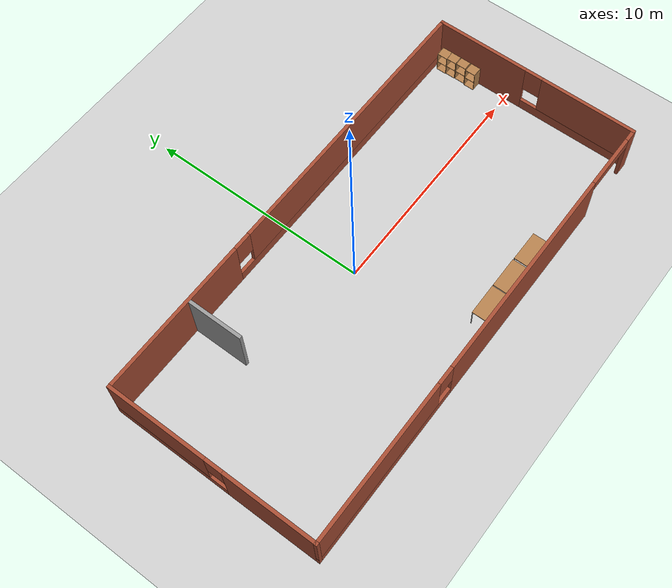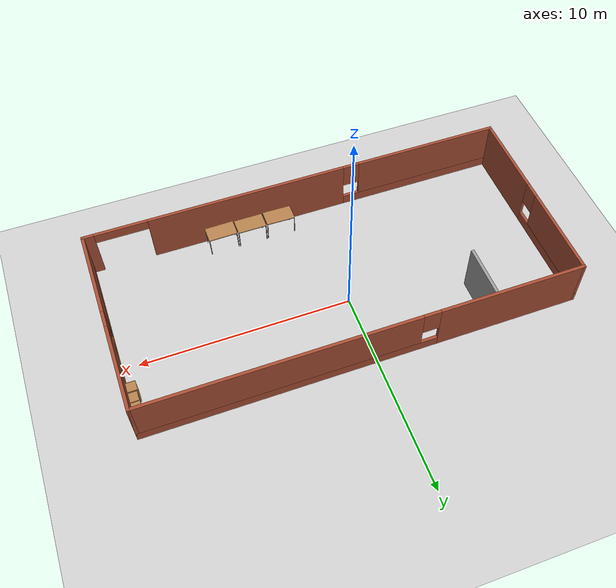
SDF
<sdf version="1.6">
 <world name="default">
  <model name="ground_plane">
   <static>1</static>
   <link name="link">
    <collision name="collision">
     <geometry><plane><normal>0 0 1</normal><size>100 100</size></plane></geometry>
     <surface><friction><ode><mu>100</mu><mu2>50</mu2></ode></friction></surface>
    </collision>
    <visual name="visual">
     <cast_shadows>0</cast_shadows>
     <geometry><plane><normal>0 0 1</normal><size>100 100</size></plane></geometry>
     <material>
      <script><uri>file://media/materials/scripts/gazebo.material</uri><name>Gazebo/Grey</name></script>
     </material>
    </visual>
   </link>
  </model>
  <model name="workplace">
   <pose>0.499703 -1.20911 0 0 -0 0</pose>
   <link name="Wall_1">
    <pose>0 4.675 0 0 -0 0</pose>
    <visual name="Wall_1_Visual_0">
     <pose>-6.85973 0 1.25 0 -0 0</pose>
     <geometry><box><size>7.03053 0.15 2.5</size></box></geometry>
     <material>
      <script><uri>file://media/materials/scripts/gazebo.material</uri><name>Gazebo/Bricks</name></script>
      <ambient>1 1 1 1</ambient>
     </material>
    </visual>
    <collision name="Wall_1_Collision_0">
     <geometry><box><size>7.03053 0.15 2.5</size></box></geometry>
     <pose>-6.85973 0 1.25 0 -0 0</pose>
    </collision>
    <visual name="Wall_1_Visual_1">
     <pose>3.51527 0 0.25 0 -0 0</pose>
     <geometry><box><size>13.7195 0.15 0.5</size></box></geometry>
     <material>
      <script><uri>file://media/materials/scripts/gazebo.material</uri><name>Gazebo/Bricks</name></script>
      <ambient>1 1 1 1</ambient>
     </material>
    </visual>
    <collision name="Wall_1_Collision_1">
     <geometry><box><size>13.7195 0.15 0.5</size></box></geometry>
     <pose>3.51527 0 0.25 0 -0 0</pose>
    </collision>
    <visual name="Wall_1_Visual_2">
     <pose>3.91527 0 1.5 0 -0 0</pose>
     <geometry><box><size>12.9195 0.15 2</size></box></geometry>
     <material>
      <script><uri>file://media/materials/scripts/gazebo.material</uri><name>Gazebo/Bricks</name></script>
      <ambient>1 1 1 1</ambient>
     </material>
    </visual>
    <collision name="Wall_1_Collision_2">
     <geometry><box><size>12.9195 0.15 2</size></box></geometry>
     <pose>3.91527 0 1.5 0 -0 0</pose>
    </collision>
    <visual name="Wall_1_Visual_3">
     <pose>-2.94447 0 1.9 0 -0 0</pose>
     <geometry><box><size>0.8 0.15 1.2</size></box></geometry>
     <material>
      <script><uri>file://media/materials/scripts/gazebo.material</uri><name>Gazebo/Bricks</name></script>
      <ambient>1 1 1 1</ambient>
     </material>
    </visual>
    <collision name="Wall_1_Collision_3">
     <geometry><box><size>0.8 0.15 1.2</size></box></geometry>
     <pose>-2.94447 0 1.9 0 -0 0</pose>
    </collision>
   </link>
   <link name="Wall_2">
    <pose>10.3 0 0 0 0 -1.5708</pose>
    <visual name="Wall_2_Visual_0">
     <pose>-2.59944 0 1.25 0 -0 0</pose>
     <geometry><box><size>4.30112 0.15 2.5</size></box></geometry>
     <material>
      <script><uri>file://media/materials/scripts/gazebo.material</uri><name>Gazebo/Bricks</name></script>
      <ambient>1 1 1 1</ambient>
     </material>
    </visual>
    <collision name="Wall_2_Collision_0">
     <geometry><box><size>4.30112 0.15 2.5</size></box></geometry>
     <pose>-2.59944 0 1.25 0 -0 0</pose>
    </collision>
    <visual name="Wall_2_Visual_1">
     <pose>2.15056 0 0.25 0 -0 0</pose>
     <geometry><box><size>5.19888 0.15 0.5</size></box></geometry>
     <material>
      <script><uri>file://media/materials/scripts/gazebo.material</uri><name>Gazebo/Bricks</name></script>
      <ambient>1 1 1 1</ambient>
     </material>
    </visual>
    <collision name="Wall_2_Collision_1">
     <geometry><box><size>5.19888 0.15 0.5</size></box></geometry>
     <pose>2.15056 0 0.25 0 -0 0</pose>
    </collision>
    <visual name="Wall_2_Visual_2">
     <pose>2.55056 0 1.5 0 -0 0</pose>
     <geometry><box><size>4.39888 0.15 2</size></box></geometry>
     <material>
      <script><uri>file://media/materials/scripts/gazebo.material</uri><name>Gazebo/Bricks</name></script>
      <ambient>1 1 1 1</ambient>
     </material>
    </visual>
    <collision name="Wall_2_Collision_2">
     <geometry><box><size>4.39888 0.15 2</size></box></geometry>
     <pose>2.55056 0 1.5 0 -0 0</pose>
    </collision>
    <visual name="Wall_2_Visual_3">
     <pose>-0.048879 0 1.9 0 -0 0</pose>
     <geometry><box><size>0.8 0.15 1.2</size></box></geometry>
     <material>
      <script><uri>file://media/materials/scripts/gazebo.material</uri><name>Gazebo/Bricks</name></script>
      <ambient>1 1 1 1</ambient>
     </material>
    </visual>
    <collision name="Wall_2_Collision_3">
     <geometry><box><size>0.8 0.15 1.2</size></box></geometry>
     <pose>-0.048879 0 1.9 0 -0 0</pose>
    </collision>
   </link>
   <link name="Wall_3">
    <pose>0 -4.675 0 0 -0 3.14159</pose>
    <visual name="Wall_3_Visual_0">
     <pose>-10.0767 0 1.25 0 -0 0</pose>
     <geometry><box><size>0.596685 0.15 2.5</size></box></geometry>
     <material>
      <script><uri>file://media/materials/scripts/gazebo.material</uri><name>Gazebo/Bricks</name></script>
      <ambient>1 1 1 1</ambient>
     </material>
    </visual>
    <collision name="Wall_3_Collision_0">
     <geometry><box><size>0.596685 0.15 2.5</size></box></geometry>
     <pose>-10.0767 0 1.25 0 -0 0</pose>
    </collision>
    <visual name="Wall_3_Visual_1">
     <pose>-2.43632 0 1.25 0 -0 0</pose>
     <geometry><box><size>9.684 0.15 2.5</size></box></geometry>
     <material>
      <script><uri>file://media/materials/scripts/gazebo.material</uri><name>Gazebo/Bricks</name></script>
      <ambient>1 1 1 1</ambient>
     </material>
    </visual>
    <collision name="Wall_3_Collision_1">
     <geometry><box><size>9.684 0.15 2.5</size></box></geometry>
     <pose>-2.43632 0 1.25 0 -0 0</pose>
    </collision>
    <visual name="Wall_3_Visual_2">
     <pose>6.39034 0 0.25 0 -0 0</pose>
     <geometry><box><size>7.96932 0.15 0.5</size></box></geometry>
     <material>
      <script><uri>file://media/materials/scripts/gazebo.material</uri><name>Gazebo/Bricks</name></script>
      <ambient>1 1 1 1</ambient>
     </material>
    </visual>
    <collision name="Wall_3_Collision_2">
     <geometry><box><size>7.96932 0.15 0.5</size></box></geometry>
     <pose>6.39034 0 0.25 0 -0 0</pose>
    </collision>
    <visual name="Wall_3_Visual_3">
     <pose>6.79034 0 1.5 0 -0 0</pose>
     <geometry><box><size>7.16932 0.15 2</size></box></geometry>
     <material>
      <script><uri>file://media/materials/scripts/gazebo.material</uri><name>Gazebo/Bricks</name></script>
      <ambient>1 1 1 1</ambient>
     </material>
    </visual>
    <collision name="Wall_3_Collision_3">
     <geometry><box><size>7.16932 0.15 2</size></box></geometry>
     <pose>6.79034 0 1.5 0 -0 0</pose>
    </collision>
    <visual name="Wall_3_Visual_4">
     <pose>2.80568 0 1.9 0 -0 0</pose>
     <geometry><box><size>0.8 0.15 1.2</size></box></geometry>
     <material>
      <script><uri>file://media/materials/scripts/gazebo.material</uri><name>Gazebo/Bricks</name></script>
      <ambient>1 1 1 1</ambient>
     </material>
    </visual>
    <collision name="Wall_3_Collision_4">
     <geometry><box><size>0.8 0.15 1.2</size></box></geometry>
     <pose>2.80568 0 1.9 0 -0 0</pose>
    </collision>
    <visual name="Wall_3_Visual_5">
     <pose>-8.52831 0 2.25 0 -0 0</pose>
     <geometry><box><size>2.5 0.15 0.5</size></box></geometry>
     <material>
      <script><uri>file://media/materials/scripts/gazebo.material</uri><name>Gazebo/Bricks</name></script>
      <ambient>1 1 1 1</ambient>
     </material>
    </visual>
    <collision name="Wall_3_Collision_5">
     <geometry><box><size>2.5 0.15 0.5</size></box></geometry>
     <pose>-8.52831 0 2.25 0 -0 0</pose>
    </collision>
   </link>
   <link name="Wall_4">
    <pose>-10.3 0 0 0 -0 1.5708</pose>
    <visual name="Wall_4_Visual_0">
     <pose>-2.66621 0 1.25 0 -0 0</pose>
     <geometry><box><size>4.16757 0.15 2.5</size></box></geometry>
     <material>
      <script><uri>file://media/materials/scripts/gazebo.material</uri><name>Gazebo/Bricks</name></script>
      <ambient>1 1 1 1</ambient>
     </material>
    </visual>
    <collision name="Wall_4_Collision_0">
     <geometry><box><size>4.16757 0.15 2.5</size></box></geometry>
     <pose>-2.66621 0 1.25 0 -0 0</pose>
    </collision>
    <visual name="Wall_4_Visual_1">
     <pose>2.08379 0 0.25 0 -0 0</pose>
     <geometry><box><size>5.33243 0.15 0.5</size></box></geometry>
     <material>
      <script><uri>file://media/materials/scripts/gazebo.material</uri><name>Gazebo/Bricks</name></script>
      <ambient>1 1 1 1</ambient>
     </material>
    </visual>
    <collision name="Wall_4_Collision_1">
     <geometry><box><size>5.33243 0.15 0.5</size></box></geometry>
     <pose>2.08379 0 0.25 0 -0 0</pose>
    </collision>
    <visual name="Wall_4_Visual_2">
     <pose>2.48379 0 1.5 0 -0 0</pose>
     <geometry><box><size>4.53243 0.15 2</size></box></geometry>
     <material>
      <script><uri>file://media/materials/scripts/gazebo.material</uri><name>Gazebo/Bricks</name></script>
      <ambient>1 1 1 1</ambient>
     </material>
    </visual>
    <collision name="Wall_4_Collision_2">
     <geometry><box><size>4.53243 0.15 2</size></box></geometry>
     <pose>2.48379 0 1.5 0 -0 0</pose>
    </collision>
    <visual name="Wall_4_Visual_3">
     <pose>-0.182428 0 1.9 0 -0 0</pose>
     <geometry><box><size>0.8 0.15 1.2</size></box></geometry>
     <material>
      <script><uri>file://media/materials/scripts/gazebo.material</uri><name>Gazebo/Bricks</name></script>
      <ambient>1 1 1 1</ambient>
     </material>
    </visual>
    <collision name="Wall_4_Collision_3">
     <geometry><box><size>0.8 0.15 1.2</size></box></geometry>
     <pose>-0.182428 0 1.9 0 -0 0</pose>
    </collision>
   </link>
   <link name="Wall_6">
    <collision name="Wall_6_Collision">
     <geometry><box><size>2.5 0.15 2.5</size></box></geometry>
     <pose>0 0 1.25 0 -0 0</pose>
    </collision>
    <visual name="Wall_6_Visual">
     <pose>0 0 1.25 0 -0 0</pose>
     <geometry><box><size>2.5 0.15 2.5</size></box></geometry>
     <material>
      <script><uri>file://media/materials/scripts/gazebo.material</uri><name>Gazebo/Grey</name></script>
      <ambient>1 1 1 1</ambient>
     </material>
    </visual>
    <pose>-6.04397 3.38435 0 0 0 -1.5708</pose>
   </link>
   <static>1</static>
  </model>
  <model name="cabinet">
   <static>1</static>
   <link name="cabinet_bottom_plate">
    <inertial>
     <pose>0 0 -1 0 -0 0</pose>
     <inertia><ixx>2.05</ixx><ixy>0</ixy><ixz>0</ixz><iyy>2.05</iyy><iyz>0</iyz><izz>2.05</izz></inertia>
     <mass>25</mass>
    </inertial>
    <collision name="cabinet_bottom_plate_geom">
     <pose>0 0 0.01 0 -0 0</pose>
     <geometry><box><size>0.45 0.45 0.02</size></box></geometry>
    </collision>
    <visual name="cabinet_bottom_plate_geom_visual">
     <pose>0 0 0.01 0 -0 0</pose>
     <geometry><box><size>0.45 0.45 0.02</size></box></geometry>
     <material>
      <script><uri>file://media/materials/scripts/gazebo.material</uri><name>Gazebo/Wood</name></script>
     </material>
    </visual>
    <collision name="cabinet_bottom_plate_geom_cabinet_back_plate">
     <pose>0.235 0 0.51 0 -0 0</pose>
     <geometry><box><size>0.02 0.45 1.02</size></box></geometry>
    </collision>
    <visual name="cabinet_bottom_plate_geom_cabinet_back_plate_visual">
     <pose>0.235 0 0.51 0 -0 0</pose>
     <geometry><box><size>0.02 0.45 1.02</size></box></geometry>
     <material>
      <script><uri>file://media/materials/scripts/gazebo.material</uri><name>Gazebo/Wood</name></script>
     </material>
    </visual>
    <collision name="cabinet_bottom_plate_geom_cabinet_left_plate">
     <pose>0 0.235 0.51 0 -0 0</pose>
     <geometry><box><size>0.45 0.02 1.02</size></box></geometry>
    </collision>
    <visual name="cabinet_bottom_plate_geom_cabinet_left_plate_visual">
     <pose>0 0.235 0.51 0 -0 0</pose>
     <geometry><box><size>0.45 0.02 1.02</size></box></geometry>
     <material>
      <script><uri>file://media/materials/scripts/gazebo.material</uri><name>Gazebo/Wood</name></script>
     </material>
    </visual>
    <collision name="cabinet_bottom_plate_geom_cabinet_middle_plate">
     <pose>0 0 0.51 0 -0 0</pose>
     <geometry><box><size>0.45 0.45 0.02</size></box></geometry>
    </collision>
    <visual name="cabinet_bottom_plate_geom_cabinet_middle_plate_visual">
     <pose>0 0 0.51 0 -0 0</pose>
     <geometry><box><size>0.45 0.45 0.02</size></box></geometry>
     <material>
      <script><uri>file://media/materials/scripts/gazebo.material</uri><name>Gazebo/Wood</name></script>
     </material>
    </visual>
    <collision name="cabinet_bottom_plate_geom_cabinet_right_plate">
     <pose>0 -0.235 0.51 0 -0 0</pose>
     <geometry><box><size>0.45 0.02 1.02</size></box></geometry>
    </collision>
    <visual name="cabinet_bottom_plate_geom_cabinet_right_plate_visual">
     <pose>0 -0.235 0.51 0 -0 0</pose>
     <geometry><box><size>0.45 0.02 1.02</size></box></geometry>
     <material>
      <script><uri>file://media/materials/scripts/gazebo.material</uri><name>Gazebo/Wood</name></script>
     </material>
    </visual>
    <collision name="cabinet_bottom_plate_geom_cabinet_top_plate">
     <pose>0 0 1.01 0 -0 0</pose>
     <geometry><box><size>0.45 0.45 0.02</size></box></geometry>
    </collision>
    <visual name="cabinet_bottom_plate_geom_cabinet_top_plate_visual">
     <pose>0 0 1.01 0 -0 0</pose>
     <geometry><box><size>0.45 0.45 0.02</size></box></geometry>
     <material>
      <script><uri>file://media/materials/scripts/gazebo.material</uri><name>Gazebo/Wood</name></script>
     </material>
    </visual>
   </link>
   <pose>10.5175 3.02369 0 0 -0 0</pose>
  </model>
  <model name="cabinet_0">
   <static>1</static>
   <link name="cabinet_bottom_plate">
    <inertial>
     <pose>0 0 -1 0 -0 0</pose>
     <inertia><ixx>2.05</ixx><ixy>0</ixy><ixz>0</ixz><iyy>2.05</iyy><iyz>0</iyz><izz>2.05</izz></inertia>
     <mass>25</mass>
    </inertial>
    <collision name="cabinet_bottom_plate_geom">
     <pose>0 0 0.01 0 -0 0</pose>
     <geometry><box><size>0.45 0.45 0.02</size></box></geometry>
    </collision>
    <visual name="cabinet_bottom_plate_geom_visual">
     <pose>0 0 0.01 0 -0 0</pose>
     <geometry><box><size>0.45 0.45 0.02</size></box></geometry>
     <material>
      <script><uri>file://media/materials/scripts/gazebo.material</uri><name>Gazebo/Wood</name></script>
     </material>
    </visual>
    <collision name="cabinet_bottom_plate_geom_cabinet_back_plate">
     <pose>0.235 0 0.51 0 -0 0</pose>
     <geometry><box><size>0.02 0.45 1.02</size></box></geometry>
    </collision>
    <visual name="cabinet_bottom_plate_geom_cabinet_back_plate_visual">
     <pose>0.235 0 0.51 0 -0 0</pose>
     <geometry><box><size>0.02 0.45 1.02</size></box></geometry>
     <material>
      <script><uri>file://media/materials/scripts/gazebo.material</uri><name>Gazebo/Wood</name></script>
     </material>
    </visual>
    <collision name="cabinet_bottom_plate_geom_cabinet_left_plate">
     <pose>0 0.235 0.51 0 -0 0</pose>
     <geometry><box><size>0.45 0.02 1.02</size></box></geometry>
    </collision>
    <visual name="cabinet_bottom_plate_geom_cabinet_left_plate_visual">
     <pose>0 0.235 0.51 0 -0 0</pose>
     <geometry><box><size>0.45 0.02 1.02</size></box></geometry>
     <material>
      <script><uri>file://media/materials/scripts/gazebo.material</uri><name>Gazebo/Wood</name></script>
     </material>
    </visual>
    <collision name="cabinet_bottom_plate_geom_cabinet_middle_plate">
     <pose>0 0 0.51 0 -0 0</pose>
     <geometry><box><size>0.45 0.45 0.02</size></box></geometry>
    </collision>
    <visual name="cabinet_bottom_plate_geom_cabinet_middle_plate_visual">
     <pose>0 0 0.51 0 -0 0</pose>
     <geometry><box><size>0.45 0.45 0.02</size></box></geometry>
     <material>
      <script><uri>file://media/materials/scripts/gazebo.material</uri><name>Gazebo/Wood</name></script>
     </material>
    </visual>
    <collision name="cabinet_bottom_plate_geom_cabinet_right_plate">
     <pose>0 -0.235 0.51 0 -0 0</pose>
     <geometry><box><size>0.45 0.02 1.02</size></box></geometry>
    </collision>
    <visual name="cabinet_bottom_plate_geom_cabinet_right_plate_visual">
     <pose>0 -0.235 0.51 0 -0 0</pose>
     <geometry><box><size>0.45 0.02 1.02</size></box></geometry>
     <material>
      <script><uri>file://media/materials/scripts/gazebo.material</uri><name>Gazebo/Wood</name></script>
     </material>
    </visual>
    <collision name="cabinet_bottom_plate_geom_cabinet_top_plate">
     <pose>0 0 1.01 0 -0 0</pose>
     <geometry><box><size>0.45 0.45 0.02</size></box></geometry>
    </collision>
    <visual name="cabinet_bottom_plate_geom_cabinet_top_plate_visual">
     <pose>0 0 1.01 0 -0 0</pose>
     <geometry><box><size>0.45 0.45 0.02</size></box></geometry>
     <material>
      <script><uri>file://media/materials/scripts/gazebo.material</uri><name>Gazebo/Wood</name></script>
     </material>
    </visual>
   </link>
   <pose>10.541 2.57633 0 0 -0 0</pose>
  </model>
  <model name="cabinet_1">
   <static>1</static>
   <link name="cabinet_bottom_plate">
    <inertial>
     <pose>0 0 -1 0 -0 0</pose>
     <inertia><ixx>2.05</ixx><ixy>0</ixy><ixz>0</ixz><iyy>2.05</iyy><iyz>0</iyz><izz>2.05</izz></inertia>
     <mass>25</mass>
    </inertial>
    <collision name="cabinet_bottom_plate_geom">
     <pose>0 0 0.01 0 -0 0</pose>
     <geometry><box><size>0.45 0.45 0.02</size></box></geometry>
    </collision>
    <visual name="cabinet_bottom_plate_geom_visual">
     <pose>0 0 0.01 0 -0 0</pose>
     <geometry><box><size>0.45 0.45 0.02</size></box></geometry>
     <material>
      <script><uri>file://media/materials/scripts/gazebo.material</uri><name>Gazebo/Wood</name></script>
     </material>
    </visual>
    <collision name="cabinet_bottom_plate_geom_cabinet_back_plate">
     <pose>0.235 0 0.51 0 -0 0</pose>
     <geometry><box><size>0.02 0.45 1.02</size></box></geometry>
    </collision>
    <visual name="cabinet_bottom_plate_geom_cabinet_back_plate_visual">
     <pose>0.235 0 0.51 0 -0 0</pose>
     <geometry><box><size>0.02 0.45 1.02</size></box></geometry>
     <material>
      <script><uri>file://media/materials/scripts/gazebo.material</uri><name>Gazebo/Wood</name></script>
     </material>
    </visual>
    <collision name="cabinet_bottom_plate_geom_cabinet_left_plate">
     <pose>0 0.235 0.51 0 -0 0</pose>
     <geometry><box><size>0.45 0.02 1.02</size></box></geometry>
    </collision>
    <visual name="cabinet_bottom_plate_geom_cabinet_left_plate_visual">
     <pose>0 0.235 0.51 0 -0 0</pose>
     <geometry><box><size>0.45 0.02 1.02</size></box></geometry>
     <material>
      <script><uri>file://media/materials/scripts/gazebo.material</uri><name>Gazebo/Wood</name></script>
     </material>
    </visual>
    <collision name="cabinet_bottom_plate_geom_cabinet_middle_plate">
     <pose>0 0 0.51 0 -0 0</pose>
     <geometry><box><size>0.45 0.45 0.02</size></box></geometry>
    </collision>
    <visual name="cabinet_bottom_plate_geom_cabinet_middle_plate_visual">
     <pose>0 0 0.51 0 -0 0</pose>
     <geometry><box><size>0.45 0.45 0.02</size></box></geometry>
     <material>
      <script><uri>file://media/materials/scripts/gazebo.material</uri><name>Gazebo/Wood</name></script>
     </material>
    </visual>
    <collision name="cabinet_bottom_plate_geom_cabinet_right_plate">
     <pose>0 -0.235 0.51 0 -0 0</pose>
     <geometry><box><size>0.45 0.02 1.02</size></box></geometry>
    </collision>
    <visual name="cabinet_bottom_plate_geom_cabinet_right_plate_visual">
     <pose>0 -0.235 0.51 0 -0 0</pose>
     <geometry><box><size>0.45 0.02 1.02</size></box></geometry>
     <material>
      <script><uri>file://media/materials/scripts/gazebo.material</uri><name>Gazebo/Wood</name></script>
     </material>
    </visual>
    <collision name="cabinet_bottom_plate_geom_cabinet_top_plate">
     <pose>0 0 1.01 0 -0 0</pose>
     <geometry><box><size>0.45 0.45 0.02</size></box></geometry>
    </collision>
    <visual name="cabinet_bottom_plate_geom_cabinet_top_plate_visual">
     <pose>0 0 1.01 0 -0 0</pose>
     <geometry><box><size>0.45 0.45 0.02</size></box></geometry>
     <material>
      <script><uri>file://media/materials/scripts/gazebo.material</uri><name>Gazebo/Wood</name></script>
     </material>
    </visual>
   </link>
   <pose>10.5535 2.08041 0 0 -0 0</pose>
  </model>
  <model name="cabinet_2">
   <static>1</static>
   <link name="cabinet_bottom_plate">
    <inertial>
     <pose>0 0 -1 0 -0 0</pose>
     <inertia><ixx>2.05</ixx><ixy>0</ixy><ixz>0</ixz><iyy>2.05</iyy><iyz>0</iyz><izz>2.05</izz></inertia>
     <mass>25</mass>
    </inertial>
    <collision name="cabinet_bottom_plate_geom">
     <pose>0 0 0.01 0 -0 0</pose>
     <geometry><box><size>0.45 0.45 0.02</size></box></geometry>
    </collision>
    <visual name="cabinet_bottom_plate_geom_visual">
     <pose>0 0 0.01 0 -0 0</pose>
     <geometry><box><size>0.45 0.45 0.02</size></box></geometry>
     <material>
      <script><uri>file://media/materials/scripts/gazebo.material</uri><name>Gazebo/Wood</name></script>
     </material>
    </visual>
    <collision name="cabinet_bottom_plate_geom_cabinet_back_plate">
     <pose>0.235 0 0.51 0 -0 0</pose>
     <geometry><box><size>0.02 0.45 1.02</size></box></geometry>
    </collision>
    <visual name="cabinet_bottom_plate_geom_cabinet_back_plate_visual">
     <pose>0.235 0 0.51 0 -0 0</pose>
     <geometry><box><size>0.02 0.45 1.02</size></box></geometry>
     <material>
      <script><uri>file://media/materials/scripts/gazebo.material</uri><name>Gazebo/Wood</name></script>
     </material>
    </visual>
    <collision name="cabinet_bottom_plate_geom_cabinet_left_plate">
     <pose>0 0.235 0.51 0 -0 0</pose>
     <geometry><box><size>0.45 0.02 1.02</size></box></geometry>
    </collision>
    <visual name="cabinet_bottom_plate_geom_cabinet_left_plate_visual">
     <pose>0 0.235 0.51 0 -0 0</pose>
     <geometry><box><size>0.45 0.02 1.02</size></box></geometry>
     <material>
      <script><uri>file://media/materials/scripts/gazebo.material</uri><name>Gazebo/Wood</name></script>
     </material>
    </visual>
    <collision name="cabinet_bottom_plate_geom_cabinet_middle_plate">
     <pose>0 0 0.51 0 -0 0</pose>
     <geometry><box><size>0.45 0.45 0.02</size></box></geometry>
    </collision>
    <visual name="cabinet_bottom_plate_geom_cabinet_middle_plate_visual">
     <pose>0 0 0.51 0 -0 0</pose>
     <geometry><box><size>0.45 0.45 0.02</size></box></geometry>
     <material>
      <script><uri>file://media/materials/scripts/gazebo.material</uri><name>Gazebo/Wood</name></script>
     </material>
    </visual>
    <collision name="cabinet_bottom_plate_geom_cabinet_right_plate">
     <pose>0 -0.235 0.51 0 -0 0</pose>
     <geometry><box><size>0.45 0.02 1.02</size></box></geometry>
    </collision>
    <visual name="cabinet_bottom_plate_geom_cabinet_right_plate_visual">
     <pose>0 -0.235 0.51 0 -0 0</pose>
     <geometry><box><size>0.45 0.02 1.02</size></box></geometry>
     <material>
      <script><uri>file://media/materials/scripts/gazebo.material</uri><name>Gazebo/Wood</name></script>
     </material>
    </visual>
    <collision name="cabinet_bottom_plate_geom_cabinet_top_plate">
     <pose>0 0 1.01 0 -0 0</pose>
     <geometry><box><size>0.45 0.45 0.02</size></box></geometry>
    </collision>
    <visual name="cabinet_bottom_plate_geom_cabinet_top_plate_visual">
     <pose>0 0 1.01 0 -0 0</pose>
     <geometry><box><size>0.45 0.45 0.02</size></box></geometry>
     <material>
      <script><uri>file://media/materials/scripts/gazebo.material</uri><name>Gazebo/Wood</name></script>
     </material>
    </visual>
   </link>
   <pose>10.5095 1.56476 0 0 -0 0</pose>
  </model>
  <model name="table">
   <static>0</static>
   <link name="link">
    <collision name="surface">
     <pose>0 0 1 0 -0 0</pose>
     <geometry><box><size>1.5 0.8 0.03</size></box></geometry>
     <surface><friction><ode><mu>0.6</mu><mu2>0.6</mu2></ode></friction></surface>
    </collision>
    <visual name="visual1">
     <pose>0 0 1 0 -0 0</pose>
     <geometry><box><size>1.4 0.8 0.04</size></box></geometry>
     <material>
      <script><uri>file://media/materials/scripts/gazebo.material</uri><name>Gazebo/Wood</name></script>
     </material>
    </visual>
    <collision name="front_left_leg">
     <pose>0.68 0.38 0.5 0 -0 0</pose>
     <geometry><cylinder><radius>0.02</radius><length>1</length></cylinder></geometry>
    </collision>
    <visual name="front_left_leg">
     <pose>0.68 0.38 0.5 0 -0 0</pose>
     <geometry><cylinder><radius>0.02</radius><length>1</length></cylinder></geometry>
     <material>
      <script><uri>file://media/materials/scripts/gazebo.material</uri><name>Gazebo/Grey</name></script>
     </material>
    </visual>
    <collision name="front_right_leg">
     <pose>0.68 -0.38 0.5 0 -0 0</pose>
     <geometry><cylinder><radius>0.02</radius><length>1</length></cylinder></geometry>
    </collision>
    <visual name="front_right_leg">
     <pose>0.68 -0.38 0.5 0 -0 0</pose>
     <geometry><cylinder><radius>0.02</radius><length>1</length></cylinder></geometry>
     <material>
      <script><uri>file://media/materials/scripts/gazebo.material</uri><name>Gazebo/Grey</name></script>
     </material>
    </visual>
    <collision name="back_right_leg">
     <pose>-0.68 -0.38 0.5 0 -0 0</pose>
     <geometry><cylinder><radius>0.02</radius><length>1</length></cylinder></geometry>
    </collision>
    <visual name="back_right_leg">
     <pose>-0.68 -0.38 0.5 0 -0 0</pose>
     <geometry><cylinder><radius>0.02</radius><length>1</length></cylinder></geometry>
     <material>
      <script><uri>file://media/materials/scripts/gazebo.material</uri><name>Gazebo/Grey</name></script>
     </material>
    </visual>
    <collision name="back_left_leg">
     <pose>-0.68 0.38 0.5 0 -0 0</pose>
     <geometry><cylinder><radius>0.02</radius><length>1</length></cylinder></geometry>
    </collision>
    <visual name="back_left_leg">
     <pose>-0.68 0.38 0.5 0 -0 0</pose>
     <geometry><cylinder><radius>0.02</radius><length>1</length></cylinder></geometry>
     <material>
      <script><uri>file://media/materials/scripts/gazebo.material</uri><name>Gazebo/Grey</name></script>
     </material>
    </visual>
    <inertial>
     <inertia><ixx>1</ixx><ixy>0</ixy><ixz>0</ixz><iyy>1</iyy><iyz>0</iyz><izz>1</izz></inertia>
     <mass>1</mass>
    </inertial>
   </link>
   <pose>3.1072 -5.30818 -1e-05 0 -1e-06 0.001461</pose>
  </model>
  <model name="table_1">
   <static>0</static>
   <link name="link">
    <collision name="surface">
     <pose>0 0 1 0 -0 0</pose>
     <geometry><box><size>1.5 0.8 0.03</size></box></geometry>
     <surface><friction><ode><mu>0.6</mu><mu2>0.6</mu2></ode></friction></surface>
    </collision>
    <visual name="visual1">
     <pose>0 0 1 0 -0 0</pose>
     <geometry><box><size>1.4 0.8 0.04</size></box></geometry>
     <material>
      <script><uri>file://media/materials/scripts/gazebo.material</uri><name>Gazebo/Wood</name></script>
     </material>
    </visual>
    <collision name="front_left_leg">
     <pose>0.68 0.38 0.5 0 -0 0</pose>
     <geometry><cylinder><radius>0.02</radius><length>1</length></cylinder></geometry>
    </collision>
    <visual name="front_left_leg">
     <pose>0.68 0.38 0.5 0 -0 0</pose>
     <geometry><cylinder><radius>0.02</radius><length>1</length></cylinder></geometry>
     <material>
      <script><uri>file://media/materials/scripts/gazebo.material</uri><name>Gazebo/Grey</name></script>
     </material>
    </visual>
    <collision name="front_right_leg">
     <pose>0.68 -0.38 0.5 0 -0 0</pose>
     <geometry><cylinder><radius>0.02</radius><length>1</length></cylinder></geometry>
    </collision>
    <visual name="front_right_leg">
     <pose>0.68 -0.38 0.5 0 -0 0</pose>
     <geometry><cylinder><radius>0.02</radius><length>1</length></cylinder></geometry>
     <material>
      <script><uri>file://media/materials/scripts/gazebo.material</uri><name>Gazebo/Grey</name></script>
     </material>
    </visual>
    <collision name="back_right_leg">
     <pose>-0.68 -0.38 0.5 0 -0 0</pose>
     <geometry><cylinder><radius>0.02</radius><length>1</length></cylinder></geometry>
    </collision>
    <visual name="back_right_leg">
     <pose>-0.68 -0.38 0.5 0 -0 0</pose>
     <geometry><cylinder><radius>0.02</radius><length>1</length></cylinder></geometry>
     <material>
      <script><uri>file://media/materials/scripts/gazebo.material</uri><name>Gazebo/Grey</name></script>
     </material>
    </visual>
    <collision name="back_left_leg">
     <pose>-0.68 0.38 0.5 0 -0 0</pose>
     <geometry><cylinder><radius>0.02</radius><length>1</length></cylinder></geometry>
    </collision>
    <visual name="back_left_leg">
     <pose>-0.68 0.38 0.5 0 -0 0</pose>
     <geometry><cylinder><radius>0.02</radius><length>1</length></cylinder></geometry>
     <material>
      <script><uri>file://media/materials/scripts/gazebo.material</uri><name>Gazebo/Grey</name></script>
     </material>
    </visual>
    <inertial>
     <inertia><ixx>1</ixx><ixy>0</ixy><ixz>0</ixz><iyy>1</iyy><iyz>0</iyz><izz>1</izz></inertia>
     <mass>1</mass>
    </inertial>
   </link>
   <pose>1.67798 -5.31563 0.015102 0 -0.021576 0.001459</pose>
  </model>
  <model name="table_2">
   <static>0</static>
   <link name="link">
    <collision name="surface">
     <pose>0 0 1 0 -0 0</pose>
     <geometry><box><size>1.5 0.8 0.03</size></box></geometry>
     <surface><friction><ode><mu>0.6</mu><mu2>0.6</mu2></ode></friction></surface>
    </collision>
    <visual name="visual1">
     <pose>0 0 1 0 -0 0</pose>
     <geometry><box><size>1.4 0.8 0.04</size></box></geometry>
     <material>
      <script><uri>file://media/materials/scripts/gazebo.material</uri><name>Gazebo/Wood</name></script>
     </material>
    </visual>
    <collision name="front_left_leg">
     <pose>0.68 0.38 0.5 0 -0 0</pose>
     <geometry><cylinder><radius>0.02</radius><length>1</length></cylinder></geometry>
    </collision>
    <visual name="front_left_leg">
     <pose>0.68 0.38 0.5 0 -0 0</pose>
     <geometry><cylinder><radius>0.02</radius><length>1</length></cylinder></geometry>
     <material>
      <script><uri>file://media/materials/scripts/gazebo.material</uri><name>Gazebo/Grey</name></script>
     </material>
    </visual>
    <collision name="front_right_leg">
     <pose>0.68 -0.38 0.5 0 -0 0</pose>
     <geometry><cylinder><radius>0.02</radius><length>1</length></cylinder></geometry>
    </collision>
    <visual name="front_right_leg">
     <pose>0.68 -0.38 0.5 0 -0 0</pose>
     <geometry><cylinder><radius>0.02</radius><length>1</length></cylinder></geometry>
     <material>
      <script><uri>file://media/materials/scripts/gazebo.material</uri><name>Gazebo/Grey</name></script>
     </material>
    </visual>
    <collision name="back_right_leg">
     <pose>-0.68 -0.38 0.5 0 -0 0</pose>
     <geometry><cylinder><radius>0.02</radius><length>1</length></cylinder></geometry>
    </collision>
    <visual name="back_right_leg">
     <pose>-0.68 -0.38 0.5 0 -0 0</pose>
     <geometry><cylinder><radius>0.02</radius><length>1</length></cylinder></geometry>
     <material>
      <script><uri>file://media/materials/scripts/gazebo.material</uri><name>Gazebo/Grey</name></script>
     </material>
    </visual>
    <collision name="back_left_leg">
     <pose>-0.68 0.38 0.5 0 -0 0</pose>
     <geometry><cylinder><radius>0.02</radius><length>1</length></cylinder></geometry>
    </collision>
    <visual name="back_left_leg">
     <pose>-0.68 0.38 0.5 0 -0 0</pose>
     <geometry><cylinder><radius>0.02</radius><length>1</length></cylinder></geometry>
     <material>
      <script><uri>file://media/materials/scripts/gazebo.material</uri><name>Gazebo/Grey</name></script>
     </material>
    </visual>
    <inertial>
     <inertia><ixx>1</ixx><ixy>0</ixy><ixz>0</ixz><iyy>1</iyy><iyz>0</iyz><izz>1</izz></inertia>
     <mass>1</mass>
    </inertial>
   </link>
   <pose>4.53645 -5.32251 0.015108 -4e-06 0.021582 0.001462</pose>
  </model>
 </world>
</sdf>
